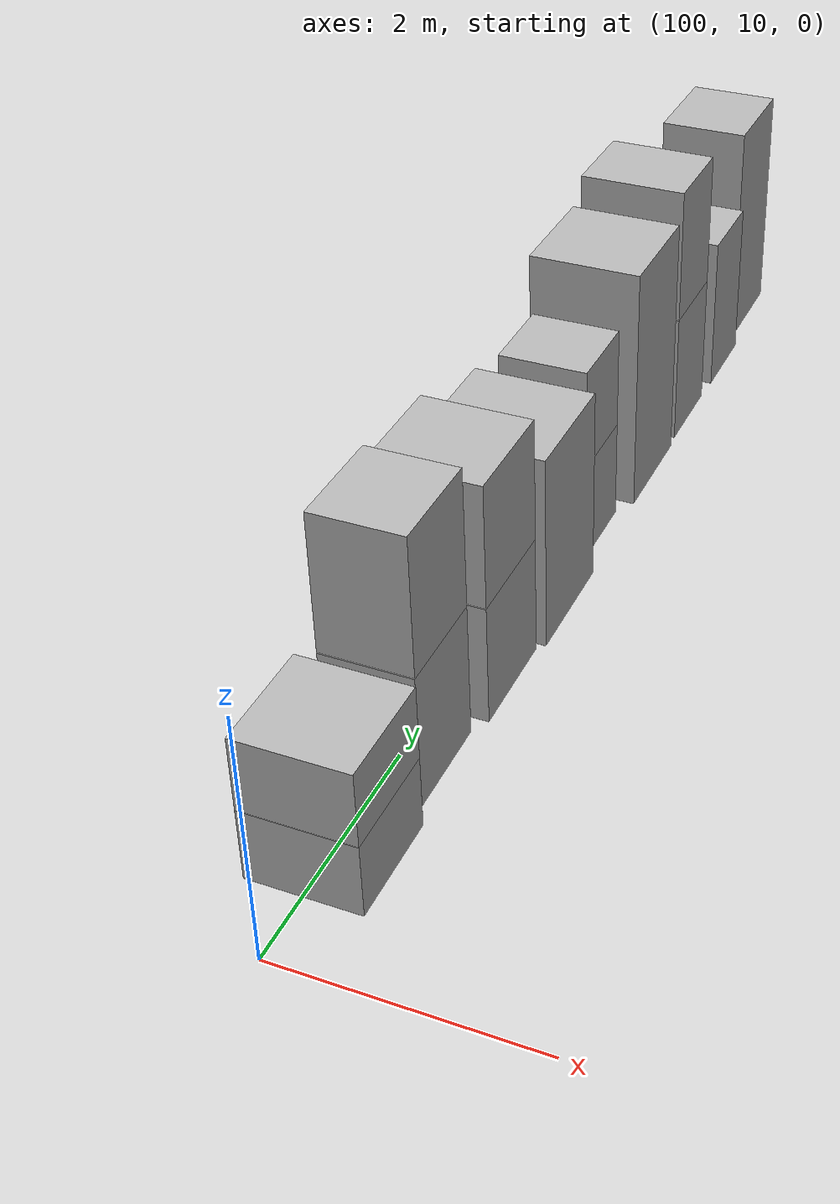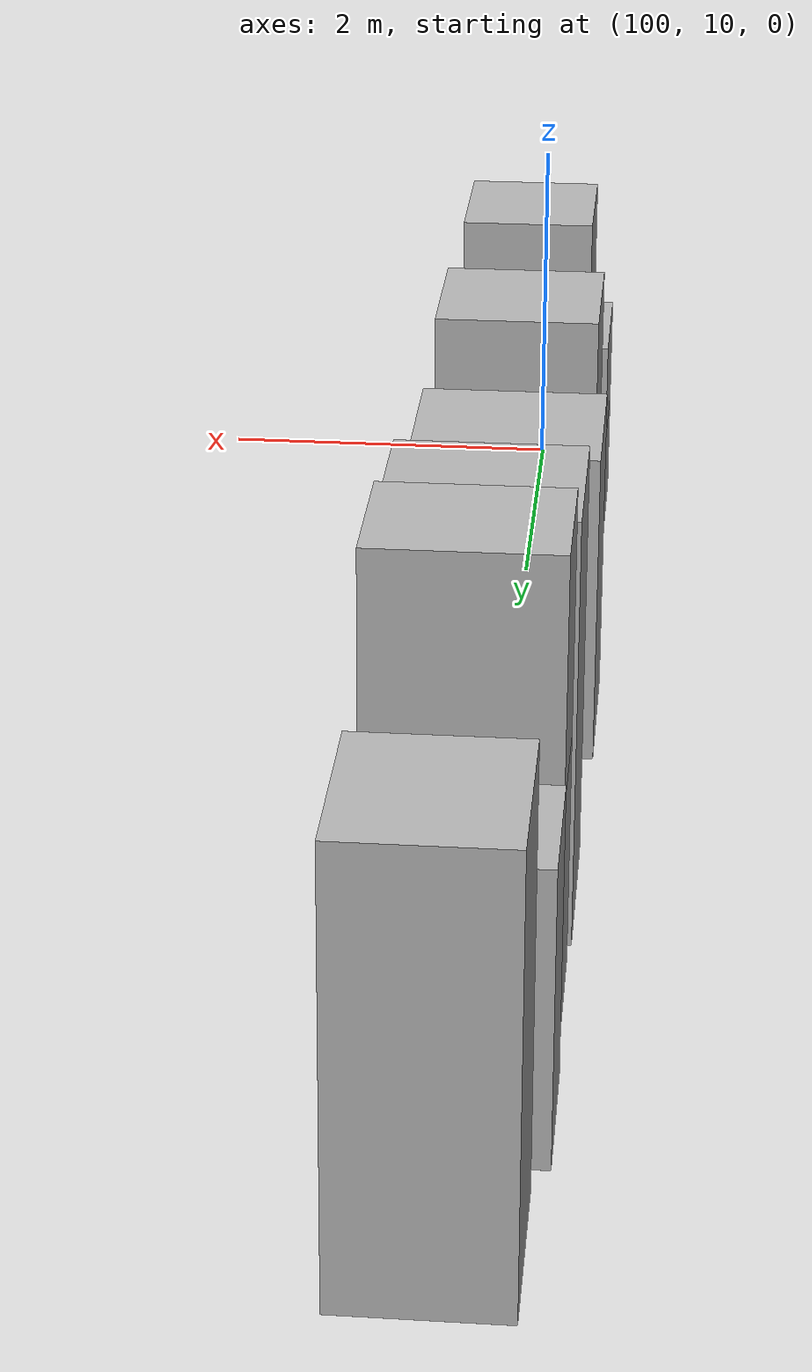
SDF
<sdf version="1.5">
 <world name="default">
  <model name="ground_plane">
   <static>true</static>
   <link name="link">
    <collision name="collision">
     <geometry><plane><normal>0 0 1</normal><size>250 250</size></plane></geometry>
     <surface><friction><ode><mu>1</mu><mu2>1</mu2></ode></friction></surface>
    </collision>
    <visual name="grass">
     <cast_shadows>false</cast_shadows>
     <geometry><mesh><uri>file://grass_plane/meshes/grass_plane.dae</uri></mesh></geometry>
    </visual>
   </link>
  </model>
  <model name="Cardboard_box_381">
   <link name="link_0">
    <pose>100 11 0 0 0 0</pose>
    <inertial>
     <mass>1</mass>
     <inertia>
      <ixx>0.166667</ixx>
      <ixy>0</ixy>
      <ixz>0</ixz>
      <iyy>0.166667</iyy>
      <iyz>0</iyz>
      <izz>0.166667</izz>
     </inertia>
    </inertial>
    <collision name="collision">
     <geometry>
      <mesh>
       <uri>model://Cardboard_box/meshes/cardboard_box.dae</uri>
       <scale>2.22471872222 2.2094097656 1.52804389694</scale>
      </mesh>
     </geometry>
    </collision>
    <visual name="visual">
     <geometry>
      <mesh>
       <uri>model://Cardboard_box/meshes/cardboard_box.dae</uri>
       <scale>2.22471872222 2.2094097656 1.52804389694</scale>
      </mesh>
     </geometry>
    </visual>
   </link>
   <static>1</static>
  </model>
  <model name="Cardboard_box_top_381">
   <link name="link_0">
    <pose>100 11 0.611217558775 0 0 0</pose>
    <inertial>
     <mass>1</mass>
     <inertia>
      <ixx>0.166667</ixx>
      <ixy>0</ixy>
      <ixz>0</ixz>
      <iyy>0.166667</iyy>
      <iyz>0</iyz>
      <izz>0.166667</izz>
     </inertia>
    </inertial>
    <collision name="collision">
     <geometry>
      <mesh>
       <uri>model://Cardboard_box/meshes/cardboard_box.dae</uri>
       <scale>2.22471872222 2.2094097656 1.52804389694</scale>
      </mesh>
     </geometry>
    </collision>
    <visual name="visual">
     <geometry>
      <mesh>
       <uri>model://Cardboard_box/meshes/cardboard_box.dae</uri>
       <scale>2.22471872222 2.2094097656 1.52804389694</scale>
      </mesh>
     </geometry>
    </visual>
   </link>
   <static>1</static>
  </model>
  <model name="Cardboard_box_382">
   <link name="link_0">
    <pose>100 12 0 0 0 0</pose>
    <inertial>
     <mass>1</mass>
     <inertia>
      <ixx>0.166667</ixx>
      <ixy>0</ixy>
      <ixz>0</ixz>
      <iyy>0.166667</iyy>
      <iyz>0</iyz>
      <izz>0.166667</izz>
     </inertia>
    </inertial>
    <collision name="collision">
     <geometry>
      <mesh>
       <uri>model://Cardboard_box/meshes/cardboard_box.dae</uri>
       <scale>1.80843023071 2.07349059219 2.85940489668</scale>
      </mesh>
     </geometry>
    </collision>
    <visual name="visual">
     <geometry>
      <mesh>
       <uri>model://Cardboard_box/meshes/cardboard_box.dae</uri>
       <scale>1.80843023071 2.07349059219 2.85940489668</scale>
      </mesh>
     </geometry>
    </visual>
   </link>
   <static>1</static>
  </model>
  <model name="Cardboard_box_top_382">
   <link name="link_0">
    <pose>100 12 1.14376195867 0 0 0</pose>
    <inertial>
     <mass>1</mass>
     <inertia>
      <ixx>0.166667</ixx>
      <ixy>0</ixy>
      <ixz>0</ixz>
      <iyy>0.166667</iyy>
      <iyz>0</iyz>
      <izz>0.166667</izz>
     </inertia>
    </inertial>
    <collision name="collision">
     <geometry>
      <mesh>
       <uri>model://Cardboard_box/meshes/cardboard_box.dae</uri>
       <scale>1.80843023071 2.07349059219 2.85940489668</scale>
      </mesh>
     </geometry>
    </collision>
    <visual name="visual">
     <geometry>
      <mesh>
       <uri>model://Cardboard_box/meshes/cardboard_box.dae</uri>
       <scale>1.80843023071 2.07349059219 2.85940489668</scale>
      </mesh>
     </geometry>
    </visual>
   </link>
   <static>1</static>
  </model>
  <model name="Cardboard_box_383">
   <link name="link_0">
    <pose>100 13 0 0 0 0</pose>
    <inertial>
     <mass>1</mass>
     <inertia>
      <ixx>0.166667</ixx>
      <ixy>0</ixy>
      <ixz>0</ixz>
      <iyy>0.166667</iyy>
      <iyz>0</iyz>
      <izz>0.166667</izz>
     </inertia>
    </inertial>
    <collision name="collision">
     <geometry>
      <mesh>
       <uri>model://Cardboard_box/meshes/cardboard_box.dae</uri>
       <scale>2.19974763769 2.23431412272 2.58145162731</scale>
      </mesh>
     </geometry>
    </collision>
    <visual name="visual">
     <geometry>
      <mesh>
       <uri>model://Cardboard_box/meshes/cardboard_box.dae</uri>
       <scale>2.19974763769 2.23431412272 2.58145162731</scale>
      </mesh>
     </geometry>
    </visual>
   </link>
   <static>1</static>
  </model>
  <model name="Cardboard_box_top_383">
   <link name="link_0">
    <pose>100 13 1.03258065092 0 0 0</pose>
    <inertial>
     <mass>1</mass>
     <inertia>
      <ixx>0.166667</ixx>
      <ixy>0</ixy>
      <ixz>0</ixz>
      <iyy>0.166667</iyy>
      <iyz>0</iyz>
      <izz>0.166667</izz>
     </inertia>
    </inertial>
    <collision name="collision">
     <geometry>
      <mesh>
       <uri>model://Cardboard_box/meshes/cardboard_box.dae</uri>
       <scale>2.19974763769 2.23431412272 2.58145162731</scale>
      </mesh>
     </geometry>
    </collision>
    <visual name="visual">
     <geometry>
      <mesh>
       <uri>model://Cardboard_box/meshes/cardboard_box.dae</uri>
       <scale>2.19974763769 2.23431412272 2.58145162731</scale>
      </mesh>
     </geometry>
    </visual>
   </link>
   <static>1</static>
  </model>
  <model name="Cardboard_box_384">
   <link name="link_0">
    <pose>100 14 0 0 0 0</pose>
    <inertial>
     <mass>1</mass>
     <inertia>
      <ixx>0.166667</ixx>
      <ixy>0</ixy>
      <ixz>0</ixz>
      <iyy>0.166667</iyy>
      <iyz>0</iyz>
      <izz>0.166667</izz>
     </inertia>
    </inertial>
    <collision name="collision">
     <geometry>
      <mesh>
       <uri>model://Cardboard_box/meshes/cardboard_box.dae</uri>
       <scale>2.48488344423 2.49284789618 4.24314853004</scale>
      </mesh>
     </geometry>
    </collision>
    <visual name="visual">
     <geometry>
      <mesh>
       <uri>model://Cardboard_box/meshes/cardboard_box.dae</uri>
       <scale>2.48488344423 2.49284789618 4.24314853004</scale>
      </mesh>
     </geometry>
    </visual>
   </link>
   <static>1</static>
  </model>
  <model name="Cardboard_box_385">
   <link name="link_0">
    <pose>100 15 0 0 0 0</pose>
    <inertial>
     <mass>1</mass>
     <inertia>
      <ixx>0.166667</ixx>
      <ixy>0</ixy>
      <ixz>0</ixz>
      <iyy>0.166667</iyy>
      <iyz>0</iyz>
      <izz>0.166667</izz>
     </inertia>
    </inertial>
    <collision name="collision">
     <geometry>
      <mesh>
       <uri>model://Cardboard_box/meshes/cardboard_box.dae</uri>
       <scale>1.84557206648 1.75490483204 2.18608522592</scale>
      </mesh>
     </geometry>
    </collision>
    <visual name="visual">
     <geometry>
      <mesh>
       <uri>model://Cardboard_box/meshes/cardboard_box.dae</uri>
       <scale>1.84557206648 1.75490483204 2.18608522592</scale>
      </mesh>
     </geometry>
    </visual>
   </link>
   <static>1</static>
  </model>
  <model name="Cardboard_box_top_385">
   <link name="link_0">
    <pose>100 15 0.874434090367 0 0 0</pose>
    <inertial>
     <mass>1</mass>
     <inertia>
      <ixx>0.166667</ixx>
      <ixy>0</ixy>
      <ixz>0</ixz>
      <iyy>0.166667</iyy>
      <iyz>0</iyz>
      <izz>0.166667</izz>
     </inertia>
    </inertial>
    <collision name="collision">
     <geometry>
      <mesh>
       <uri>model://Cardboard_box/meshes/cardboard_box.dae</uri>
       <scale>1.84557206648 1.75490483204 2.18608522592</scale>
      </mesh>
     </geometry>
    </collision>
    <visual name="visual">
     <geometry>
      <mesh>
       <uri>model://Cardboard_box/meshes/cardboard_box.dae</uri>
       <scale>1.84557206648 1.75490483204 2.18608522592</scale>
      </mesh>
     </geometry>
    </visual>
   </link>
   <static>1</static>
  </model>
  <model name="Cardboard_box_386">
   <link name="link_0">
    <pose>100 16 0 0 0 0</pose>
    <inertial>
     <mass>1</mass>
     <inertia>
      <ixx>0.166667</ixx>
      <ixy>0</ixy>
      <ixz>0</ixz>
      <iyy>0.166667</iyy>
      <iyz>0</iyz>
      <izz>0.166667</izz>
     </inertia>
    </inertial>
    <collision name="collision">
     <geometry>
      <mesh>
       <uri>model://Cardboard_box/meshes/cardboard_box.dae</uri>
       <scale>2.34933761143 2.40238110852 5.43771776251</scale>
      </mesh>
     </geometry>
    </collision>
    <visual name="visual">
     <geometry>
      <mesh>
       <uri>model://Cardboard_box/meshes/cardboard_box.dae</uri>
       <scale>2.34933761143 2.40238110852 5.43771776251</scale>
      </mesh>
     </geometry>
    </visual>
   </link>
   <static>1</static>
  </model>
  <model name="Cardboard_box_387">
   <link name="link_0">
    <pose>100 17 0 0 0 0</pose>
    <inertial>
     <mass>1</mass>
     <inertia>
      <ixx>0.166667</ixx>
      <ixy>0</ixy>
      <ixz>0</ixz>
      <iyy>0.166667</iyy>
      <iyz>0</iyz>
      <izz>0.166667</izz>
     </inertia>
    </inertial>
    <collision name="collision">
     <geometry>
      <mesh>
       <uri>model://Cardboard_box/meshes/cardboard_box.dae</uri>
       <scale>2.27207422671 1.92854289544 2.98476481666</scale>
      </mesh>
     </geometry>
    </collision>
    <visual name="visual">
     <geometry>
      <mesh>
       <uri>model://Cardboard_box/meshes/cardboard_box.dae</uri>
       <scale>2.27207422671 1.92854289544 2.98476481666</scale>
      </mesh>
     </geometry>
    </visual>
   </link>
   <static>1</static>
  </model>
  <model name="Cardboard_box_top_387">
   <link name="link_0">
    <pose>100 17 1.19390592666 0 0 0</pose>
    <inertial>
     <mass>1</mass>
     <inertia>
      <ixx>0.166667</ixx>
      <ixy>0</ixy>
      <ixz>0</ixz>
      <iyy>0.166667</iyy>
      <iyz>0</iyz>
      <izz>0.166667</izz>
     </inertia>
    </inertial>
    <collision name="collision">
     <geometry>
      <mesh>
       <uri>model://Cardboard_box/meshes/cardboard_box.dae</uri>
       <scale>2.27207422671 1.92854289544 2.98476481666</scale>
      </mesh>
     </geometry>
    </collision>
    <visual name="visual">
     <geometry>
      <mesh>
       <uri>model://Cardboard_box/meshes/cardboard_box.dae</uri>
       <scale>2.27207422671 1.92854289544 2.98476481666</scale>
      </mesh>
     </geometry>
    </visual>
   </link>
   <static>1</static>
  </model>
  <model name="Cardboard_box_388">
   <link name="link_0">
    <pose>100 18 0 0 0 0</pose>
    <inertial>
     <mass>1</mass>
     <inertia>
      <ixx>0.166667</ixx>
      <ixy>0</ixy>
      <ixz>0</ixz>
      <iyy>0.166667</iyy>
      <iyz>0</iyz>
      <izz>0.166667</izz>
     </inertia>
    </inertial>
    <collision name="collision">
     <geometry>
      <mesh>
       <uri>model://Cardboard_box/meshes/cardboard_box.dae</uri>
       <scale>2.33665003955 1.89686128388 3.59169493362</scale>
      </mesh>
     </geometry>
    </collision>
    <visual name="visual">
     <geometry>
      <mesh>
       <uri>model://Cardboard_box/meshes/cardboard_box.dae</uri>
       <scale>2.33665003955 1.89686128388 3.59169493362</scale>
      </mesh>
     </geometry>
    </visual>
   </link>
   <static>1</static>
  </model>
  <model name="Cardboard_box_389">
   <link name="link_0">
    <pose>100 19 0 0 0 0</pose>
    <inertial>
     <mass>1</mass>
     <inertia>
      <ixx>0.166667</ixx>
      <ixy>0</ixy>
      <ixz>0</ixz>
      <iyy>0.166667</iyy>
      <iyz>0</iyz>
      <izz>0.166667</izz>
     </inertia>
    </inertial>
    <collision name="collision">
     <geometry>
      <mesh>
       <uri>model://Cardboard_box/meshes/cardboard_box.dae</uri>
       <scale>1.95071545592 2.32208727223 5.25841998735</scale>
      </mesh>
     </geometry>
    </collision>
    <visual name="visual">
     <geometry>
      <mesh>
       <uri>model://Cardboard_box/meshes/cardboard_box.dae</uri>
       <scale>1.95071545592 2.32208727223 5.25841998735</scale>
      </mesh>
     </geometry>
    </visual>
   </link>
   <static>1</static>
  </model>
 </world>
</sdf>
